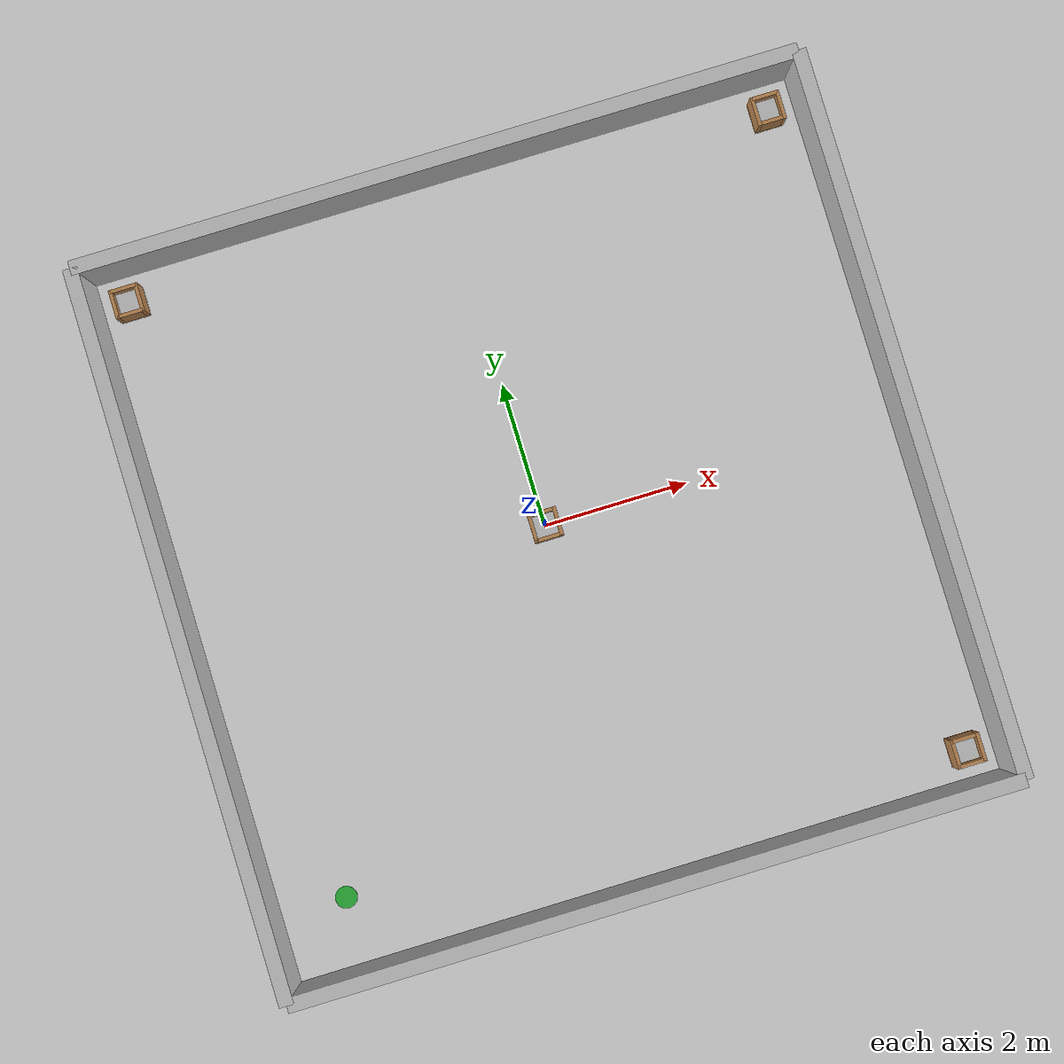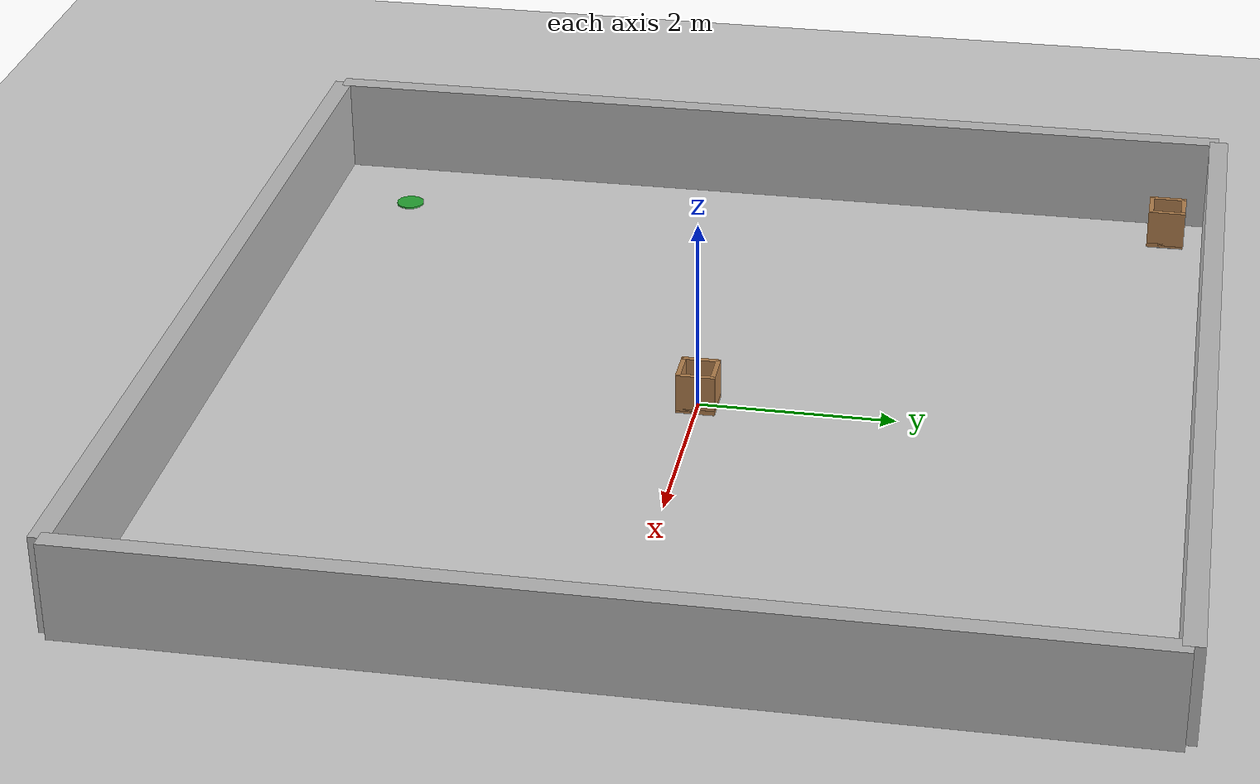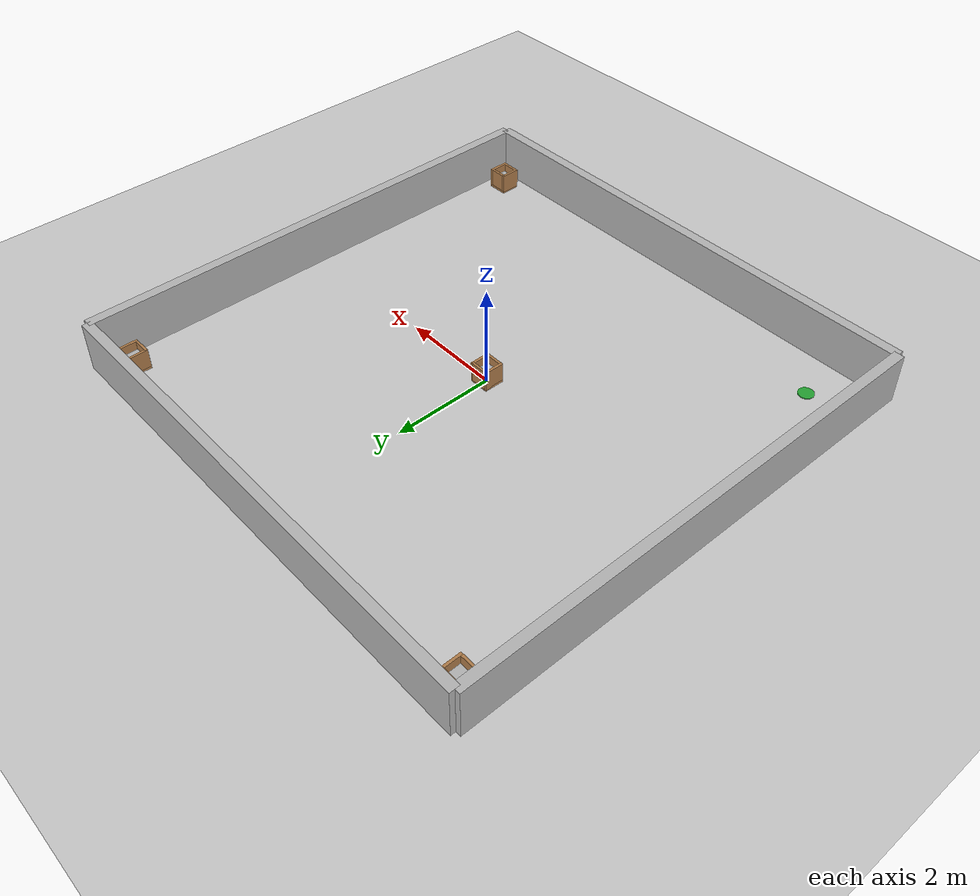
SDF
<?xml version="1.0" ?>
<sdf version="1.6">
  <world name="large_garden_world">
    <!-- 光源 -->
    <include>
      <uri>model://sun</uri>
    </include>

    <!-- 地面 -->
    <include>
      <uri>model://ground_plane</uri>
    </include>

    <!-- ================== 邊界牆體 ================== -->
    <model name="boundary_walls">
      <static>true</static>
      <pose>0 0 0.5 0 0 0</pose>
      <link name="walls">
        <!-- North Wall -->
        <visual name="visual_north"><pose>0 5 0 0 0 0</pose><geometry><box><size>10 0.2 1</size></box></geometry></visual>
        <collision name="collision_north"><pose>0 5 0 0 0 0</pose><geometry><box><size>10 0.2 1</size></box></geometry></collision>
        <!-- South Wall -->
        <visual name="visual_south"><pose>0 -5 0 0 0 0</pose><geometry><box><size>10 0.2 1</size></box></geometry></visual>
        <collision name="collision_south"><pose>0 -5 0 0 0 0</pose><geometry><box><size>10 0.2 1</size></box></geometry></collision>
        <!-- East Wall -->
        <visual name="visual_east"><pose>5 0 0 0 0 0</pose><geometry><box><size>0.2 10 1</size></box></geometry></visual>
        <collision name="collision_east"><pose>5 0 0 0 0 0</pose><geometry><box><size>0.2 10 1</size></box></geometry></collision>
        <!-- West Wall -->
        <visual name="visual_west"><pose>-5 0 0 0 0 0</pose><geometry><box><size>0.2 10 1</size></box></geometry></visual>
        <collision name="collision_west"><pose>-5 0 0 0 0 0</pose><geometry><box><size>0.2 10 1</size></box></geometry></collision>
      </link>
    </model>

    <!-- ================== 盆栽 ================== -->
    <include>
      <uri>model://pot</uri>
      <name>plant_target_1</name>
      <pose>-4.5 4.5 0 0 0 0</pose>
    </include>
    <include>
      <uri>model://pot</uri>
      <name>plant_target_2</name>
      <pose>0 0 0 0 0 0</pose>
    </include>
    <include>
      <uri>model://pot</uri>
      <name>plant_target_3</name>
      <pose>4.5 -4.5 0 0 0 0</pose>
    </include>
    <include>
      <uri>model://pot</uri>
      <name>plant_target_4</name>
      <pose>4.5 4.5 0 0 0 0</pose>
    </include>

    <!-- 充電站 -->
    <model name='charging_station_marker'>
      <static>true</static>
      <pose>-4 -4 0.01 0 0 0</pose>
      <link name='marker_link'>
        <visual name='visual_marker'>
          <geometry><cylinder><radius>0.15</radius><length>0.02</length></cylinder></geometry>
          <material><script><uri>file://media/materials/scripts/gazebo.material</uri><name>Gazebo/Green</name></script></material>
        </visual>
      </link>
    </model>

  </world>
</sdf>

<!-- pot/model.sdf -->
<sdf version="1.6">
  <model name="custom_pot">
    <static>true</static>
    <link name="pot_link">

      <!-- ==================== Visuals ==================== -->

      <!-- Base -->
      <visual name="base_visual">
        <pose>0 0 0.025 0 0 0</pose>
        <geometry>
          <box><size>0.4 0.4 0.05</size></box>
        </geometry>
        <material>
          <script><uri>file://media/materials/scripts/gazebo.material</uri><name>Gazebo/Wood</name></script>
        </material>
      </visual>

      <!-- Side Walls -->
      <!-- Front Wall -->
      <visual name="front_wall_visual">
        <pose>0.175 0 0.225 0 0 0</pose>
        <geometry><box><size>0.05 0.4 0.4</size></box></geometry>
        <material><script><uri>file://media/materials/scripts/gazebo.material</uri><name>Gazebo/Wood</name></script></material>
      </visual>
      <!-- Back Wall -->
      <visual name="back_wall_visual">
        <pose>-0.175 0 0.225 0 0 0</pose>
        <geometry><box><size>0.05 0.4 0.4</size></box></geometry>
        <material><script><uri>file://media/materials/scripts/gazebo.material</uri><name>Gazebo/Wood</name></script></material>
      </visual>
      <!-- Right Wall -->
      <visual name="right_wall_visual">
        <pose>0 -0.175 0.225 0 0 0</pose>
        <geometry><box><size>0.35 0.05 0.4</size></box></geometry>
        <material><script><uri>file://media/materials/scripts/gazebo.material</uri><name>Gazebo/Wood</name></script></material>
      </visual>
      <!-- Left Wall -->
      <visual name="left_wall_visual">
        <pose>0 0.175 0.225 0 0 0</pose>
        <geometry><box><size>0.35 0.05 0.4</size></box></geometry>
        <material><script><uri>file://media/materials/scripts/gazebo.material</uri><name>Gazebo/Wood</name></script></material>
      </visual>

      <!-- Soil -->
      <visual name="soil_visual">
        <pose>0 0 0.1 0 0 0</pose>
        <geometry>
          <box><size>0.35 0.35 0.3</size></box>
        </geometry>
        <material>
          <script><uri>file://media/materials/scripts/gazebo.material</uri><name>Gazebo/Dirt</name></script>
        </material>
      </visual>

      <!-- ==================== Collisions ==================== -->

      <!-- Front Wall Collision -->
      <collision name="front_wall_collision">
        <pose>0.175 0 0.225 0 0 0</pose>
        <geometry><box><size>0.05 0.4 0.45</size></box></geometry>
      </collision>
      <!-- Back Wall Collision -->
      <collision name="back_wall_collision">
        <pose>-0.175 0 0.225 0 0 0</pose>
        <geometry><box><size>0.05 0.4 0.45</size></box></geometry>
      </collision>
      <!-- Right Wall Collision -->
      <collision name="right_wall_collision">
        <pose>0 -0.175 0.225 0 0 0</pose>
        <geometry><box><size>0.4 0.05 0.45</size></box></geometry>
      </collision>
      <!-- Left Wall Collision -->
      <collision name="left_wall_collision">
        <pose>0 0.175 0.225 0 0 0</pose>
        <geometry><box><size>0.4 0.05 0.45</size></box></geometry>
      </collision>

    </link>
  </model>
</sdf>
